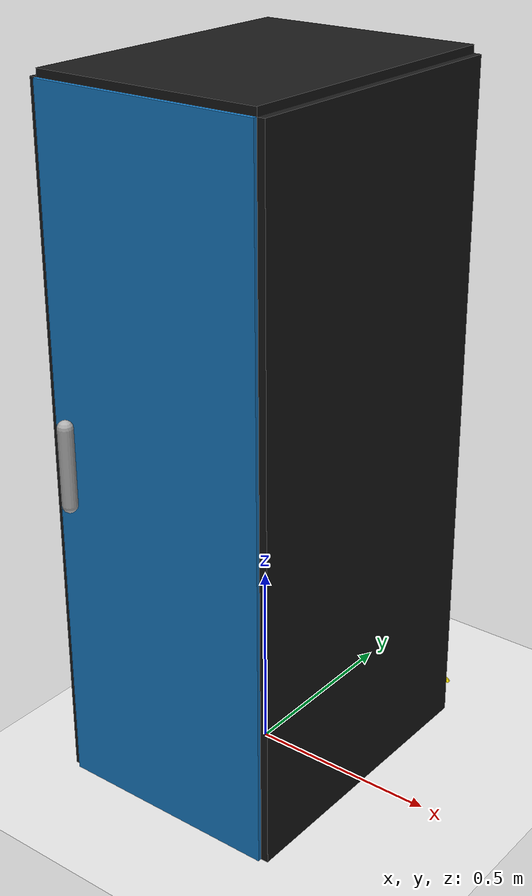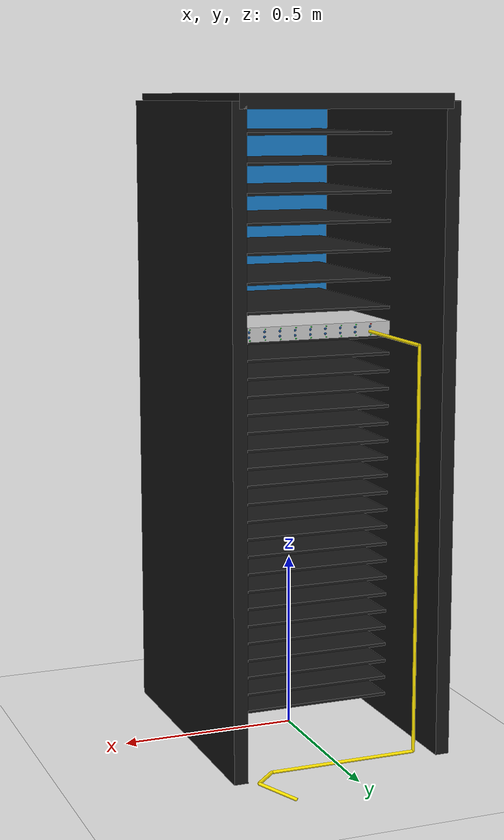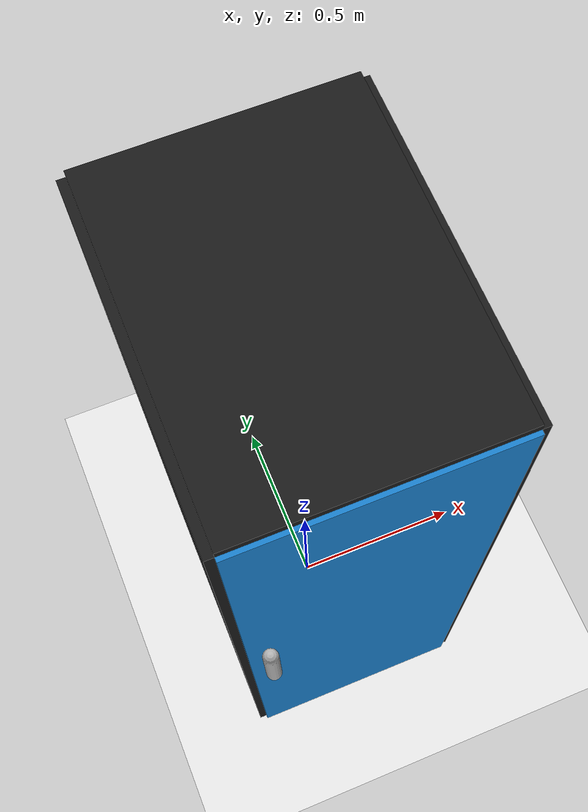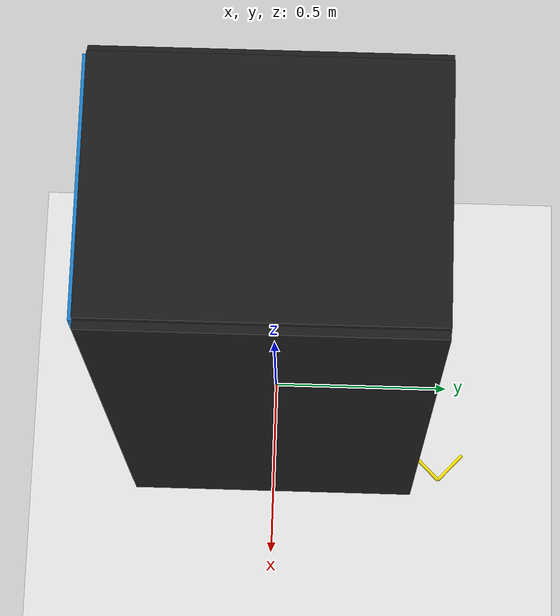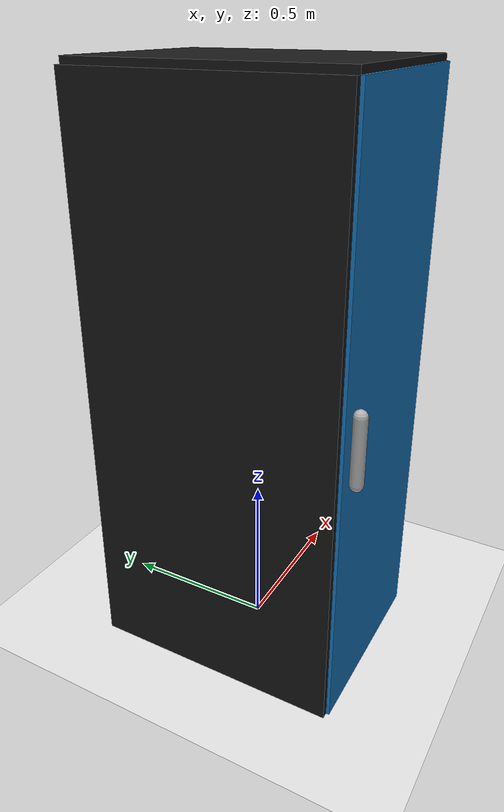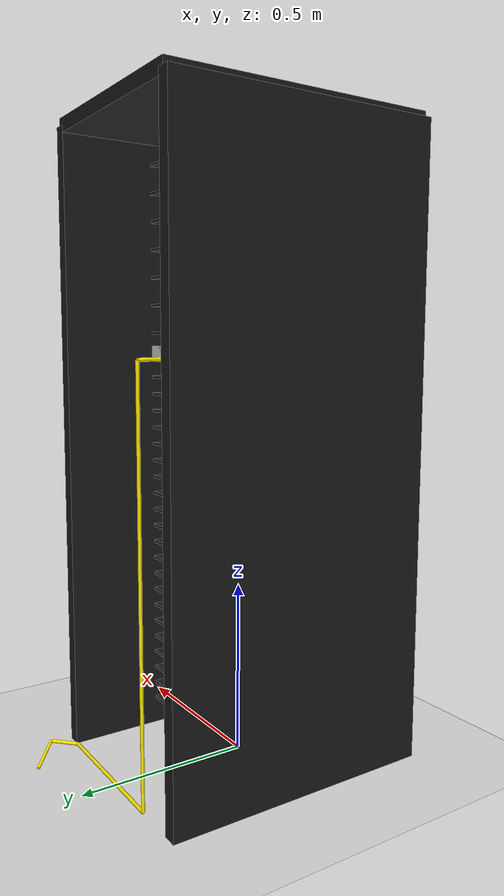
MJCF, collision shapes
<mujoco model="Rack_Single_Server">
    <compiler angle="degree" coordinate="local" autolimits="true"/>
    <option gravity="0 0 -9.81" timestep="0.0004" integrator="implicitfast" iterations="150" tolerance="1e-8" ls_iterations="20"/>

    <asset>
        <texture type="skybox" builtin="gradient" rgb1="0.3 0.5 0.7" rgb2="0 0 0" width="512" height="512"/>
        <material name="rack_metal" rgba="0.1 0.1 0.1 1" reflectance="0.2"/>
        <material name="glass_door" rgba="0.1 0.5 0.8 0.2" reflectance="0.5"/>
        <material name="cable_yellow" rgba="1 0.9 0 1"/>
        <material name="switch_face" rgba="0.8 0.8 0.8 1"/>
        <material name="led_green" rgba="0.15 1.0 0.25 1" reflectance="0.35" specular="0.45" shininess="0.35"/>
        <material name="led_red" rgba="0.95 0.12 0.12 1" reflectance="0.35" specular="0.45" shininess="0.35"/>
        <texture name="device_barcode_tex" type="2d" file="device_barcode.png"/>
        <material name="device_barcode" texture="device_barcode_tex" texuniform="false" texrepeat="1 1" reflectance="0.25"/>
        <mesh name="device_barcode_mesh" file="device_barcode.obj"/>
    </asset>

    <worldbody>
        <body name="scene" pos="0 0 0" euler="0 0 270">
        <light pos="1 1 3" dir="-0.3 -0.3 -1" directional="true"/>
        <geom name="floor" type="plane" size="4 4 0.1" pos="0 0 0" rgba="0.9 0.9 0.9 1"/>

        <body name="cabinet" pos="0 0 0">
            <geom name="left_wall" type="box" size="0.4 0.02 0.9" pos="0 0.3 0.9" material="rack_metal"/>
            <geom name="right_wall" type="box" size="0.4 0.02 0.9" pos="0 -0.3 0.9" material="rack_metal"/>
            <geom name="top_cap" type="box" size="0.4 0.3 0.02" pos="0 0 1.8" material="rack_metal"/>

            <body name="glass_door" pos="0.4 0.3 0.9">
                <joint name="door_hinge" type="hinge" axis="0 0 1" range="0 150" damping="2.0"/>
                <geom name="door_visual" type="box" size="0.01 0.3 0.9" pos="0 -0.3 0" material="glass_door"/>
                <geom name="handle" type="capsule" size="0.02 0.1" pos="0.03 -0.55 0" rgba="0.7 0.7 0.7 1"/>
            </body>

            <!-- 하부 빈 슬롯 empty_00~20 (피치 0.05m) -->
            <body name="empty_00" pos="0.1 0 0.125">
                <joint name="empty_00_slide" type="slide" axis="1 0 0" range="0 0.32" damping="8" frictionloss="1"/>
                <geom name="empty_00_tray" type="box" size="0.25 0.24 0.004" pos="0 0 -0.022" material="rack_metal" friction="1 0.005 0.0001"/>
            </body>
            <body name="empty_01" pos="0.1 0 0.175">
                <joint name="empty_01_slide" type="slide" axis="1 0 0" range="0 0.32" damping="8" frictionloss="1"/>
                <geom name="empty_01_tray" type="box" size="0.25 0.24 0.004" pos="0 0 -0.022" material="rack_metal" friction="1 0.005 0.0001"/>
            </body>
            <body name="empty_02" pos="0.1 0 0.225">
                <joint name="empty_02_slide" type="slide" axis="1 0 0" range="0 0.32" damping="8" frictionloss="1"/>
                <geom name="empty_02_tray" type="box" size="0.25 0.24 0.004" pos="0 0 -0.022" material="rack_metal" friction="1 0.005 0.0001"/>
            </body>
            <body name="empty_03" pos="0.1 0 0.275">
                <joint name="empty_03_slide" type="slide" axis="1 0 0" range="0 0.32" damping="8" frictionloss="1"/>
                <geom name="empty_03_tray" type="box" size="0.25 0.24 0.004" pos="0 0 -0.022" material="rack_metal" friction="1 0.005 0.0001"/>
            </body>
            <body name="empty_04" pos="0.1 0 0.325">
                <joint name="empty_04_slide" type="slide" axis="1 0 0" range="0 0.32" damping="8" frictionloss="1"/>
                <geom name="empty_04_tray" type="box" size="0.25 0.24 0.004" pos="0 0 -0.022" material="rack_metal" friction="1 0.005 0.0001"/>
            </body>
            <body name="empty_05" pos="0.1 0 0.375">
                <joint name="empty_05_slide" type="slide" axis="1 0 0" range="0 0.32" damping="8" frictionloss="1"/>
                <geom name="empty_05_tray" type="box" size="0.25 0.24 0.004" pos="0 0 -0.022" material="rack_metal" friction="1 0.005 0.0001"/>
            </body>
            <body name="empty_06" pos="0.1 0 0.425">
                <joint name="empty_06_slide" type="slide" axis="1 0 0" range="0 0.32" damping="8" frictionloss="1"/>
                <geom name="empty_06_tray" type="box" size="0.25 0.24 0.004" pos="0 0 -0.022" material="rack_metal" friction="1 0.005 0.0001"/>
            </body>
            <body name="empty_07" pos="0.1 0 0.475">
                <joint name="empty_07_slide" type="slide" axis="1 0 0" range="0 0.32" damping="8" frictionloss="1"/>
                <geom name="empty_07_tray" type="box" size="0.25 0.24 0.004" pos="0 0 -0.022" material="rack_metal" friction="1 0.005 0.0001"/>
            </body>
            <body name="empty_08" pos="0.1 0 0.525">
                <joint name="empty_08_slide" type="slide" axis="1 0 0" range="0 0.32" damping="8" frictionloss="1"/>
                <geom name="empty_08_tray" type="box" size="0.25 0.24 0.004" pos="0 0 -0.022" material="rack_metal" friction="1 0.005 0.0001"/>
            </body>
            <body name="empty_09" pos="0.1 0 0.575">
                <joint name="empty_09_slide" type="slide" axis="1 0 0" range="0 0.32" damping="8" frictionloss="1"/>
                <geom name="empty_09_tray" type="box" size="0.25 0.24 0.004" pos="0 0 -0.022" material="rack_metal" friction="1 0.005 0.0001"/>
            </body>
            <body name="empty_10" pos="0.1 0 0.625">
                <joint name="empty_10_slide" type="slide" axis="1 0 0" range="0 0.32" damping="8" frictionloss="1"/>
                <geom name="empty_10_tray" type="box" size="0.25 0.24 0.004" pos="0 0 -0.022" material="rack_metal" friction="1 0.005 0.0001"/>
            </body>
            <body name="empty_11" pos="0.1 0 0.675">
                <joint name="empty_11_slide" type="slide" axis="1 0 0" range="0 0.32" damping="8" frictionloss="1"/>
                <geom name="empty_11_tray" type="box" size="0.25 0.24 0.004" pos="0 0 -0.022" material="rack_metal" friction="1 0.005 0.0001"/>
            </body>
            <body name="empty_12" pos="0.1 0 0.725">
                <joint name="empty_12_slide" type="slide" axis="1 0 0" range="0 0.32" damping="8" frictionloss="1"/>
                <geom name="empty_12_tray" type="box" size="0.25 0.24 0.004" pos="0 0 -0.022" material="rack_metal" friction="1 0.005 0.0001"/>
            </body>
            <body name="empty_13" pos="0.1 0 0.775">
                <joint name="empty_13_slide" type="slide" axis="1 0 0" range="0 0.32" damping="8" frictionloss="1"/>
                <geom name="empty_13_tray" type="box" size="0.25 0.24 0.004" pos="0 0 -0.022" material="rack_metal" friction="1 0.005 0.0001"/>
            </body>
            <body name="empty_14" pos="0.1 0 0.825">
                <joint name="empty_14_slide" type="slide" axis="1 0 0" range="0 0.32" damping="8" frictionloss="1"/>
                <geom name="empty_14_tray" type="box" size="0.25 0.24 0.004" pos="0 0 -0.022" material="rack_metal" friction="1 0.005 0.0001"/>
            </body>
            <body name="empty_15" pos="0.1 0 0.875">
                <joint name="empty_15_slide" type="slide" axis="1 0 0" range="0 0.32" damping="8" frictionloss="1"/>
                <geom name="empty_15_tray" type="box" size="0.25 0.24 0.004" pos="0 0 -0.022" material="rack_metal" friction="1 0.005 0.0001"/>
            </body>
            <body name="empty_16" pos="0.1 0 0.925">
                <joint name="empty_16_slide" type="slide" axis="1 0 0" range="0 0.32" damping="8" frictionloss="1"/>
                <geom name="empty_16_tray" type="box" size="0.25 0.24 0.004" pos="0 0 -0.022" material="rack_metal" friction="1 0.005 0.0001"/>
            </body>
            <body name="empty_17" pos="0.1 0 0.975">
                <joint name="empty_17_slide" type="slide" axis="1 0 0" range="0 0.32" damping="8" frictionloss="1"/>
                <geom name="empty_17_tray" type="box" size="0.25 0.24 0.004" pos="0 0 -0.022" material="rack_metal" friction="1 0.005 0.0001"/>
            </body>
            <body name="empty_18" pos="0.1 0 1.025">
                <joint name="empty_18_slide" type="slide" axis="1 0 0" range="0 0.32" damping="8" frictionloss="1"/>
                <geom name="empty_18_tray" type="box" size="0.25 0.24 0.004" pos="0 0 -0.022" material="rack_metal" friction="1 0.005 0.0001"/>
            </body>
            <body name="empty_19" pos="0.1 0 1.075">
                <joint name="empty_19_slide" type="slide" axis="1 0 0" range="0 0.32" damping="8" frictionloss="1"/>
                <geom name="empty_19_tray" type="box" size="0.25 0.24 0.004" pos="0 0 -0.022" material="rack_metal" friction="1 0.005 0.0001"/>
            </body>
            <body name="empty_20" pos="0.1 0 1.125">
                <joint name="empty_20_slide" type="slide" axis="1 0 0" range="0 0.32" damping="8" frictionloss="1"/>
                <geom name="empty_20_tray" type="box" size="0.25 0.24 0.004" pos="0 0 -0.022" material="rack_metal" friction="1 0.005 0.0001"/>
            </body>

            <!-- 유일한 서버: 최하단(z=1.175). 랜 포트·케이블 텐던·빨간 LED 1개 -->
            <body name="srv_00" pos="0.1 0 1.175">
                <joint name="srv_00_shelf_slide" type="slide" axis="1 0 0" range="0 0.32" damping="8" frictionloss="1"/>
                <geom name="srv_00_geom" type="box" size="0.25 0.24 0.02" material="switch_face"/>
                <geom name="srv_00_barcode" type="mesh" mesh="device_barcode_mesh" pos="0.252 -0.18 0" euler="0 180 0" material="device_barcode" contype="0" conaffinity="0"/>
                <site name="srv_00_lan_0" pos="-0.25 -0.18 -0.007" size="0.0035" rgba="0.12 0.32 0.55 1"/>
                <site name="srv_00_lan_1" pos="-0.25 -0.135 -0.007" size="0.0035" rgba="0.12 0.32 0.55 1"/>
                <site name="srv_00_lan_2" pos="-0.25 -0.09 -0.007" size="0.0035" rgba="0.12 0.32 0.55 1"/>
                <site name="srv_00_lan_3" pos="-0.25 -0.045 -0.007" size="0.0035" rgba="0.12 0.32 0.55 1"/>
                <site name="srv_00_lan_4" pos="-0.25 0.00 -0.007" size="0.0035" rgba="0.12 0.32 0.55 1"/>
                <site name="srv_00_lan_5" pos="-0.25 0.045 -0.007" size="0.0035" rgba="0.12 0.32 0.55 1"/>
                <site name="srv_00_lan_6" pos="-0.25 0.09 -0.007" size="0.0035" rgba="0.12 0.32 0.55 1"/>
                <site name="srv_00_lan_7" pos="-0.25 0.135 -0.007" size="0.0035" rgba="0.12 0.32 0.55 1"/>
                <site name="srv_00_lan_8" pos="-0.25 0.18 -0.007" size="0.0035" rgba="0.12 0.32 0.55 1"/>
                <site name="srv_00_lan_9" pos="-0.25 -0.18 0.007" size="0.0035" rgba="0.12 0.32 0.55 1"/>
                <site name="srv_00_lan_10" pos="-0.25 -0.135 0.007" size="0.0035" rgba="0.12 0.32 0.55 1"/>
                <site name="srv_00_lan_11" pos="-0.25 -0.09 0.007" size="0.0035" rgba="0.12 0.32 0.55 1"/>
                <site name="srv_00_lan_12" pos="-0.25 -0.045 0.007" size="0.0035" rgba="0.12 0.32 0.55 1"/>
                <site name="srv_00_lan_13" pos="-0.25 0.00 0.007" size="0.0035" rgba="0.12 0.32 0.55 1"/>
                <site name="srv_00_lan_14" pos="-0.25 0.045 0.007" size="0.0035" rgba="0.12 0.32 0.55 1"/>
                <site name="srv_00_lan_15" pos="-0.25 0.09 0.007" size="0.0035" rgba="0.12 0.32 0.55 1"/>
                <site name="srv_00_lan_16" pos="-0.25 0.135 0.007" size="0.0035" rgba="0.12 0.32 0.55 1"/>
                <site name="srv_00_lan_17" pos="-0.25 0.18 0.007" size="0.0035" rgba="0.12 0.32 0.55 1"/>
                <geom name="srv_00_led_0" type="sphere" size="0.002" pos="-0.257 -0.18 -0.015" material="led_green" contype="0" conaffinity="0"/>
                <geom name="srv_00_led_1" type="sphere" size="0.002" pos="-0.257 -0.135 -0.015" material="led_green" contype="0" conaffinity="0"/>
                <geom name="srv_00_led_2" type="sphere" size="0.002" pos="-0.257 -0.09 -0.015" material="led_green" contype="0" conaffinity="0"/>
                <geom name="srv_00_led_3" type="sphere" size="0.002" pos="-0.257 -0.045 -0.015" material="led_green" contype="0" conaffinity="0"/>
                <geom name="srv_00_led_4" type="sphere" size="0.002" pos="-0.257 0.00 -0.015" material="led_green" contype="0" conaffinity="0"/>
                <geom name="srv_00_led_5" type="sphere" size="0.002" pos="-0.257 0.045 -0.015" material="led_green" contype="0" conaffinity="0"/>
                <geom name="srv_00_led_6" type="sphere" size="0.002" pos="-0.257 0.09 -0.015" material="led_green" contype="0" conaffinity="0"/>
                <geom name="srv_00_led_7" type="sphere" size="0.002" pos="-0.257 0.135 -0.015" material="led_green" contype="0" conaffinity="0"/>
                <geom name="srv_00_led_8" type="sphere" size="0.002" pos="-0.257 0.18 -0.015" material="led_green" contype="0" conaffinity="0"/>
                <geom name="srv_00_led_9" type="sphere" size="0.002" pos="-0.257 -0.18 0.015" material="led_red" contype="0" conaffinity="0"/>
                <geom name="srv_00_led_10" type="sphere" size="0.002" pos="-0.257 -0.135 0.015" material="led_green" contype="0" conaffinity="0"/>
                <geom name="srv_00_led_11" type="sphere" size="0.002" pos="-0.257 -0.09 0.015" material="led_green" contype="0" conaffinity="0"/>
                <geom name="srv_00_led_12" type="sphere" size="0.002" pos="-0.257 -0.045 0.015" material="led_green" contype="0" conaffinity="0"/>
                <geom name="srv_00_led_13" type="sphere" size="0.002" pos="-0.257 0.00 0.015" material="led_green" contype="0" conaffinity="0"/>
                <geom name="srv_00_led_14" type="sphere" size="0.002" pos="-0.257 0.045 0.015" material="led_green" contype="0" conaffinity="0"/>
                <geom name="srv_00_led_15" type="sphere" size="0.002" pos="-0.257 0.09 0.015" material="led_green" contype="0" conaffinity="0"/>
                <geom name="srv_00_led_16" type="sphere" size="0.002" pos="-0.257 0.135 0.015" material="led_green" contype="0" conaffinity="0"/>
                <geom name="srv_00_led_17" type="sphere" size="0.002" pos="-0.257 0.18 0.015" material="led_green" contype="0" conaffinity="0"/>
                <geom name="srv_00_shelf_geom" type="box" size="0.25 0.24 0.004" pos="0 0 -0.022" material="rack_metal" friction="1 0.005 0.0001"/>
            </body>

            <!-- 기존 다중 서버 자리: 빈 슬라이드만 (피치 0.08m) -->
            <body name="slide_u01" pos="0.1 0 1.255">
                <joint name="slide_u01_joint" type="slide" axis="1 0 0" range="0 0.32" damping="8" frictionloss="1"/>
                <geom name="slide_u01_tray" type="box" size="0.25 0.24 0.004" pos="0 0 -0.022" material="rack_metal" friction="1 0.005 0.0001"/>
            </body>
            <body name="slide_u02" pos="0.1 0 1.335">
                <joint name="slide_u02_joint" type="slide" axis="1 0 0" range="0 0.32" damping="8" frictionloss="1"/>
                <geom name="slide_u02_tray" type="box" size="0.25 0.24 0.004" pos="0 0 -0.022" material="rack_metal" friction="1 0.005 0.0001"/>
            </body>
            <body name="slide_u03" pos="0.1 0 1.415">
                <joint name="slide_u03_joint" type="slide" axis="1 0 0" range="0 0.32" damping="8" frictionloss="1"/>
                <geom name="slide_u03_tray" type="box" size="0.25 0.24 0.004" pos="0 0 -0.022" material="rack_metal" friction="1 0.005 0.0001"/>
            </body>
            <body name="slide_u04" pos="0.1 0 1.495">
                <joint name="slide_u04_joint" type="slide" axis="1 0 0" range="0 0.32" damping="8" frictionloss="1"/>
                <geom name="slide_u04_tray" type="box" size="0.25 0.24 0.004" pos="0 0 -0.022" material="rack_metal" friction="1 0.005 0.0001"/>
            </body>
            <body name="slide_u05" pos="0.1 0 1.575">
                <joint name="slide_u05_joint" type="slide" axis="1 0 0" range="0 0.32" damping="8" frictionloss="1"/>
                <geom name="slide_u05_tray" type="box" size="0.25 0.24 0.004" pos="0 0 -0.022" material="rack_metal" friction="1 0.005 0.0001"/>
            </body>
            <body name="slide_u06" pos="0.1 0 1.655">
                <joint name="slide_u06_joint" type="slide" axis="1 0 0" range="0 0.32" damping="8" frictionloss="1"/>
                <geom name="slide_u06_tray" type="box" size="0.25 0.24 0.004" pos="0 0 -0.022" material="rack_metal" friction="1 0.005 0.0001"/>
            </body>
            <body name="slide_u07" pos="0.1 0 1.735">
                <joint name="slide_u07_joint" type="slide" axis="1 0 0" range="0 0.32" damping="8" frictionloss="1"/>
                <geom name="slide_u07_tray" type="box" size="0.25 0.24 0.004" pos="0 0 -0.022" material="rack_metal" friction="1 0.005 0.0001"/>
            </body>
        </body>

        <site name="lan_rt1_a" pos="-0.42 -0.20 1.163" size="0.002" rgba="0 0 0 0"/>
        <site name="lan_rt1_b" pos="-0.42 -0.20 0.03" size="0.002" rgba="0 0 0 0"/>
        <site name="lan_rt1_c" pos="-0.42 0.22 0.03" size="0.002" rgba="0 0 0 0"/>
        <site name="lan_rt1_d" pos="-0.48 0.28 0.03" size="0.002" rgba="0 0 0 0"/>
        <site name="floor_target_1" pos="-0.55 0.20 0" size="0.02" rgba="0 0 0 0"/>

        </body>
        <camera name="rack_front" pos="0 2.5 1.0" xyaxes="-1 0 0 0 0 1"/>
    </worldbody>

    <tendon>
        <spatial name="cable_tendon_1" width="0.005" material="cable_yellow">
            <site site="srv_00_lan_0"/>
            <site site="lan_rt1_a"/>
            <site site="lan_rt1_b"/>
            <site site="lan_rt1_c"/>
            <site site="lan_rt1_d"/>
            <site site="floor_target_1"/>
        </spatial>
    </tendon>
</mujoco>
